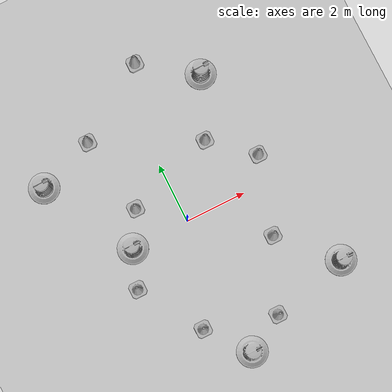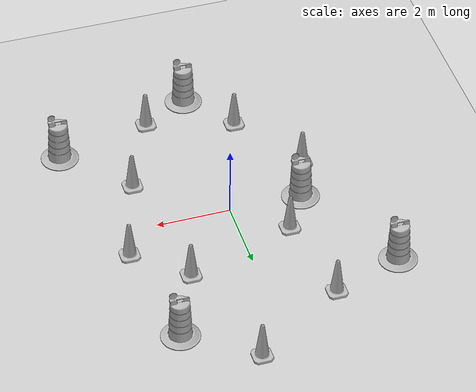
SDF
<sdf version="1.7">
 <world name="default">
  <light name="sun" type="directional">
   <pose>0 0 10 0 -0 0</pose>
   <diffuse>0.8 0.8 0.8 1</diffuse>
   <specular>0.2 0.2 0.2 1</specular>
   <attenuation>
    <range>1000</range>
    <constant>0.9</constant>
    <linear>0.01</linear>
    <quadratic>0.001</quadratic>
   </attenuation>
   <direction>-0.5 0.1 -0.9</direction>
   <spot><inner_angle>0</inner_angle><outer_angle>0</outer_angle><falloff>0</falloff></spot>
  </light>
  <model name="ground_plane">
   <static>1</static>
   <link name="link">
    <collision name="collision">
     <geometry><plane><normal>0 0 1</normal><size>100 100</size></plane></geometry>
     <surface><friction><ode><mu>100</mu><mu2>50</mu2></ode></friction></surface>
    </collision>
    <visual name="visual">
     <cast_shadows>0</cast_shadows>
     <geometry><plane><normal>0 0 1</normal><size>100 100</size></plane></geometry>
     <material>
      <script><uri>file://media/materials/scripts/gazebo.material</uri><name>Gazebo/Grey</name></script>
     </material>
    </visual>
   </link>
  </model>
  <gravity>0 0 -9.8</gravity>
  <magnetic_field>6e-06 2.3e-05 -4.2e-05</magnetic_field>
  <atmosphere type="adiabatic"/>
  <physics type="ode">
   <max_step_size>0.001</max_step_size>
   <real_time_factor>1</real_time_factor>
   <real_time_update_rate>1000</real_time_update_rate>
  </physics>
  <scene><ambient>0.4 0.4 0.4 1</ambient><background>0.7 0.7 0.7 1</background><shadows>1</shadows></scene>
  <audio><device>default</device></audio>
  <spherical_coordinates>
   <surface_model>EARTH_WGS84</surface_model>
   <latitude_deg>0</latitude_deg>
   <longitude_deg>0</longitude_deg>
   <elevation>0</elevation>
   <heading_deg>0</heading_deg>
  </spherical_coordinates>
  <model name="Construction Cone">
   <link name="link">
    <collision name="collision">
     <geometry>
      <mesh><scale>10 10 10</scale><uri>model://construction_cone/meshes/construction_cone.dae</uri></mesh>
     </geometry>
    </collision>
    <visual name="visual">
     <geometry>
      <mesh><scale>10 10 10</scale><uri>model://construction_cone/meshes/construction_cone.dae</uri></mesh>
     </geometry>
    </visual>
    <inertial>
     <inertia><ixx>1</ixx><ixy>0</ixy><ixz>0</ixz><iyy>1</iyy><iyz>0</iyz><izz>1</izz></inertia>
     <mass>1</mass>
    </inertial>
   </link>
   <pose>-2.38043 -1.22277 0 0 -0 0</pose>
  </model>
  <model name="Construction Cone_clone">
   <link name="link">
    <collision name="collision">
     <geometry>
      <mesh><scale>10 10 10</scale><uri>model://construction_cone/meshes/construction_cone.dae</uri></mesh>
     </geometry>
    </collision>
    <visual name="visual">
     <geometry>
      <mesh><scale>10 10 10</scale><uri>model://construction_cone/meshes/construction_cone.dae</uri></mesh>
     </geometry>
    </visual>
    <inertial>
     <inertia><ixx>1</ixx><ixy>0</ixy><ixz>0</ixz><iyy>1</iyy><iyz>0</iyz><izz>1</izz></inertia>
     <mass>1</mass>
    </inertial>
   </link>
   <pose>-1.29125 1.10547 0 0 -0 0</pose>
  </model>
  <model name="Construction Cone_clone_0">
   <link name="link">
    <collision name="collision">
     <geometry>
      <mesh><scale>10 10 10</scale><uri>model://construction_cone/meshes/construction_cone.dae</uri></mesh>
     </geometry>
    </collision>
    <visual name="visual">
     <geometry>
      <mesh><scale>10 10 10</scale><uri>model://construction_cone/meshes/construction_cone.dae</uri></mesh>
     </geometry>
    </visual>
    <inertial>
     <inertia><ixx>1</ixx><ixy>0</ixy><ixz>0</ixz><iyy>1</iyy><iyz>0</iyz><izz>1</izz></inertia>
     <mass>1</mass>
    </inertial>
   </link>
   <pose>-1.703 3.69722 0 0 -0 0</pose>
  </model>
  <model name="Construction Cone_clone_1">
   <link name="link">
    <collision name="collision">
     <geometry>
      <mesh><scale>10 10 10</scale><uri>model://construction_cone/meshes/construction_cone.dae</uri></mesh>
     </geometry>
    </collision>
    <visual name="visual">
     <geometry>
      <mesh><scale>10 10 10</scale><uri>model://construction_cone/meshes/construction_cone.dae</uri></mesh>
     </geometry>
    </visual>
    <inertial>
     <inertia><ixx>1</ixx><ixy>0</ixy><ixz>0</ixz><iyy>1</iyy><iyz>0</iyz><izz>1</izz></inertia>
     <mass>1</mass>
    </inertial>
   </link>
   <pose>0.789324 5.31314 0 0 -0 0</pose>
  </model>
  <model name="Construction Cone_clone_2">
   <link name="link">
    <collision name="collision">
     <geometry>
      <mesh><scale>10 10 10</scale><uri>model://construction_cone/meshes/construction_cone.dae</uri></mesh>
     </geometry>
    </collision>
    <visual name="visual">
     <geometry>
      <mesh><scale>10 10 10</scale><uri>model://construction_cone/meshes/construction_cone.dae</uri></mesh>
     </geometry>
    </visual>
    <inertial>
     <inertia><ixx>1</ixx><ixy>0</ixy><ixz>0</ixz><iyy>1</iyy><iyz>0</iyz><izz>1</izz></inertia>
     <mass>1</mass>
    </inertial>
   </link>
   <pose>1.66998 2.07545 0 0 -0 0</pose>
  </model>
  <model name="Construction Cone_clone_3">
   <link name="link">
    <collision name="collision">
     <geometry>
      <mesh><scale>10 10 10</scale><uri>model://construction_cone/meshes/construction_cone.dae</uri></mesh>
     </geometry>
    </collision>
    <visual name="visual">
     <geometry>
      <mesh><scale>10 10 10</scale><uri>model://construction_cone/meshes/construction_cone.dae</uri></mesh>
     </geometry>
    </visual>
    <inertial>
     <inertia><ixx>1</ixx><ixy>0</ixy><ixz>0</ixz><iyy>1</iyy><iyz>0</iyz><izz>1</izz></inertia>
     <mass>1</mass>
    </inertial>
   </link>
   <pose>2.97383 0.900502 0 0 -0 0</pose>
  </model>
  <model name="Construction Cone_clone_4">
   <link name="link">
    <collision name="collision">
     <geometry>
      <mesh><scale>10 10 10</scale><uri>model://construction_cone/meshes/construction_cone.dae</uri></mesh>
     </geometry>
    </collision>
    <visual name="visual">
     <geometry>
      <mesh><scale>10 10 10</scale><uri>model://construction_cone/meshes/construction_cone.dae</uri></mesh>
     </geometry>
    </visual>
    <inertial>
     <inertia><ixx>1</ixx><ixy>0</ixy><ixz>0</ixz><iyy>1</iyy><iyz>0</iyz><izz>1</izz></inertia>
     <mass>1</mass>
    </inertial>
   </link>
   <pose>2.20942 -1.62308 0 0 -0 0</pose>
  </model>
  <model name="Construction Cone_clone_5">
   <link name="link">
    <collision name="collision">
     <geometry>
      <mesh><scale>10 10 10</scale><uri>model://construction_cone/meshes/construction_cone.dae</uri></mesh>
     </geometry>
    </collision>
    <visual name="visual">
     <geometry>
      <mesh><scale>10 10 10</scale><uri>model://construction_cone/meshes/construction_cone.dae</uri></mesh>
     </geometry>
    </visual>
    <inertial>
     <inertia><ixx>1</ixx><ixy>0</ixy><ixz>0</ixz><iyy>1</iyy><iyz>0</iyz><izz>1</izz></inertia>
     <mass>1</mass>
    </inertial>
   </link>
   <pose>1.20446 -3.91981 0 0 -0 0</pose>
  </model>
  <model name="Construction Cone_clone_6">
   <link name="link">
    <collision name="collision">
     <geometry>
      <mesh><scale>10 10 10</scale><uri>model://construction_cone/meshes/construction_cone.dae</uri></mesh>
     </geometry>
    </collision>
    <visual name="visual">
     <geometry>
      <mesh><scale>10 10 10</scale><uri>model://construction_cone/meshes/construction_cone.dae</uri></mesh>
     </geometry>
    </visual>
    <inertial>
     <inertia><ixx>1</ixx><ixy>0</ixy><ixz>0</ixz><iyy>1</iyy><iyz>0</iyz><izz>1</izz></inertia>
     <mass>1</mass>
    </inertial>
   </link>
   <pose>-1.10398 -3.26503 0 0 -0 0</pose>
  </model>
  <model name="Construction Barrel">
   <link name="link">
    <inertial>
     <pose>0 0 0.4 0 -0 0</pose>
     <mass>500</mass>
     <inertia><ixx>51.2096</ixx><iyy>51.2096</iyy><izz>25</izz><ixy>0</ixy><ixz>0</ixz><iyz>0</iyz></inertia>
    </inertial>
    <collision name="collision">
     <geometry><mesh><uri>model://construction_barrel/meshes/construction_barrel.dae</uri></mesh></geometry>
    </collision>
    <visual name="visual">
     <geometry><mesh><uri>model://construction_barrel/meshes/construction_barrel.dae</uri></mesh></geometry>
    </visual>
   </link>
   <pose>-1.93963 0.008273 0 0 -0 0</pose>
  </model>
  <model name="Construction Barrel_clone">
   <link name="link">
    <inertial>
     <pose>0 0 0.4 0 -0 0</pose>
     <mass>500</mass>
     <inertia><ixx>51.2096</ixx><iyy>51.2096</iyy><izz>25</izz><ixy>0</ixy><ixz>0</ixz><iyz>0</iyz></inertia>
    </inertial>
    <collision name="collision">
     <geometry><mesh><uri>model://construction_barrel/meshes/construction_barrel.dae</uri></mesh></geometry>
    </collision>
    <visual name="visual">
     <geometry><mesh><uri>model://construction_barrel/meshes/construction_barrel.dae</uri></mesh></geometry>
    </visual>
   </link>
   <pose>-3.59561 3.01069 0 0 -0 0</pose>
  </model>
  <model name="Construction Barrel_clone_0">
   <link name="link">
    <inertial>
     <pose>0 0 0.4 0 -0 0</pose>
     <mass>500</mass>
     <inertia><ixx>51.2096</ixx><iyy>51.2096</iyy><izz>25</izz><ixy>0</ixy><ixz>0</ixz><iyz>0</iyz></inertia>
    </inertial>
    <collision name="collision">
     <geometry><mesh><uri>model://construction_barrel/meshes/construction_barrel.dae</uri></mesh></geometry>
    </collision>
    <visual name="visual">
     <geometry><mesh><uri>model://construction_barrel/meshes/construction_barrel.dae</uri></mesh></geometry>
    </visual>
   </link>
   <pose>2.5228 4.05251 0 0 -0 0</pose>
  </model>
  <model name="Construction Barrel_clone_1">
   <link name="link">
    <inertial>
     <pose>0 0 0.4 0 -0 0</pose>
     <mass>500</mass>
     <inertia><ixx>51.2096</ixx><iyy>51.2096</iyy><izz>25</izz><ixy>0</ixy><ixz>0</ixz><iyz>0</iyz></inertia>
    </inertial>
    <collision name="collision">
     <geometry><mesh><uri>model://construction_barrel/meshes/construction_barrel.dae</uri></mesh></geometry>
    </collision>
    <visual name="visual">
     <geometry><mesh><uri>model://construction_barrel/meshes/construction_barrel.dae</uri></mesh></geometry>
    </visual>
   </link>
   <pose>-0.050217 -4.59636 0 0 -0 0</pose>
  </model>
  <model name="Construction Barrel_clone_2">
   <link name="link">
    <inertial>
     <pose>0 0 0.4 0 -0 0</pose>
     <mass>500</mass>
     <inertia><ixx>51.2096</ixx><iyy>51.2096</iyy><izz>25</izz><ixy>0</ixy><ixz>0</ixz><iyz>0</iyz></inertia>
    </inertial>
    <collision name="collision">
     <geometry><mesh><uri>model://construction_barrel/meshes/construction_barrel.dae</uri></mesh></geometry>
    </collision>
    <visual name="visual">
     <geometry><mesh><uri>model://construction_barrel/meshes/construction_barrel.dae</uri></mesh></geometry>
    </visual>
   </link>
   <pose>3.77349 -3.29446 0 0 -0 0</pose>
  </model>
 </world>
</sdf>
